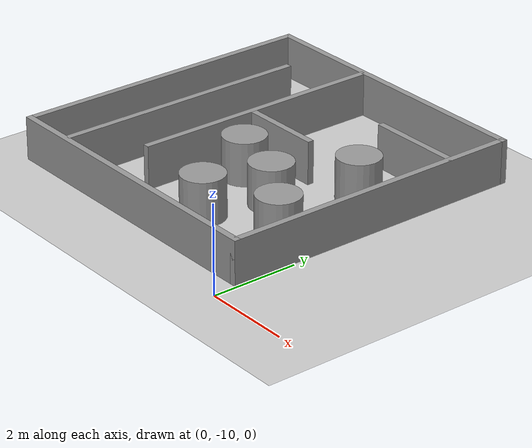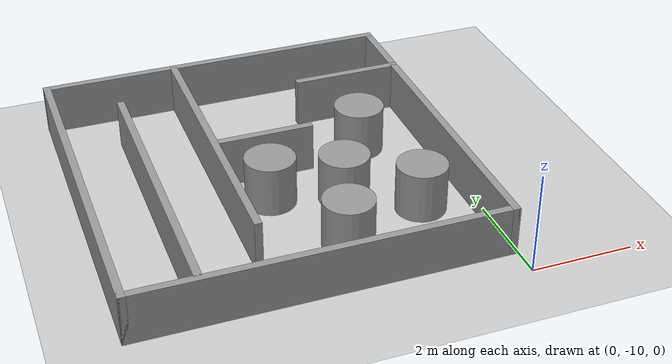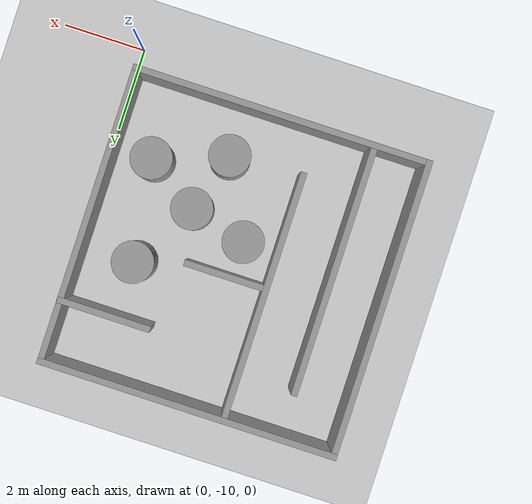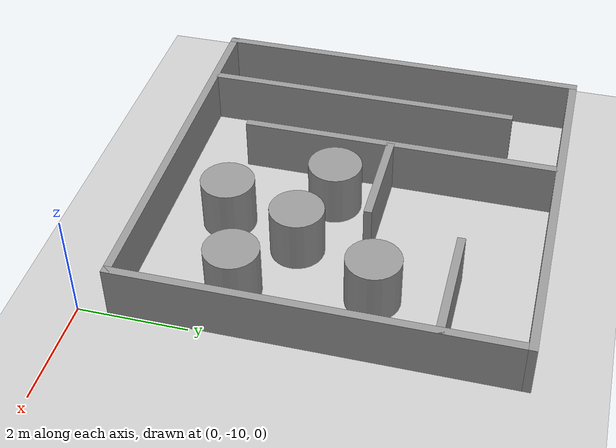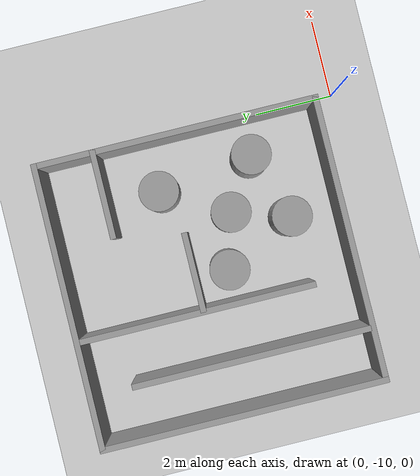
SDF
<sdf version="1.6">
 <world name="default">
  <light name="sun" type="directional">
   <pose>0 0 10 0 -0 0</pose>
   <diffuse>0.8 0.8 0.8 1</diffuse>
   <specular>0.1 0.1 0.1 1</specular>
   <attenuation>
    <range>1000</range>
    <constant>0.9</constant>
    <linear>0.01</linear>
    <quadratic>0.001</quadratic>
   </attenuation>
   <direction>-0.5 0.5 -1</direction>
  </light>
  <model name="ground_plane">
   <static>1</static>
   <link name="link">
    <collision name="collision">
     <geometry><plane><normal>0 0 1</normal><size>100 100</size></plane></geometry>
     <surface><friction><ode><mu>100</mu><mu2>50</mu2></ode></friction></surface>
    </collision>
    <visual name="visual">
     <cast_shadows>0</cast_shadows>
     <geometry><plane><normal>0 0 1</normal><size>100 100</size></plane></geometry>
     <material>
      <script><uri>file://media/materials/scripts/gazebo.material</uri><name>Gazebo/Grey</name></script>
     </material>
    </visual>
   </link>
  </model>
  <gravity>0 0 -9.8</gravity>
  <magnetic_field>6e-06 2.3e-05 -4.2e-05</magnetic_field>
  <atmosphere type="adiabatic"/>
  <physics name="default_physics" default="0" type="ode">
   <max_step_size>0.001</max_step_size>
   <real_time_factor>1</real_time_factor>
   <real_time_update_rate>1000</real_time_update_rate>
  </physics>
  <scene><ambient>0.4 0.4 0.4 1</ambient><background>0.7 0.7 0.7 1</background><shadows>1</shadows></scene>
  <spherical_coordinates>
   <surface_model>EARTH_WGS84</surface_model>
   <latitude_deg>0</latitude_deg>
   <longitude_deg>0</longitude_deg>
   <elevation>0</elevation>
   <heading_deg>0</heading_deg>
  </spherical_coordinates>
  <model name="empty_maze">
   <pose>-3.66 -5.84 0 0 -0 0</pose>
   <link name="Wall_0">
    <collision name="Wall_0_Collision">
     <geometry><box><size>7.25 0.15 1</size></box></geometry>
     <pose>0 0 0.5 0 -0 0</pose>
    </collision>
    <visual name="Wall_0_Visual">
     <pose>0 0 0.5 0 -0 0</pose>
     <geometry><box><size>7.25 0.15 1</size></box></geometry>
     <material>
      <script><uri>file://media/materials/scripts/gazebo.material</uri><name>Gazebo/Grey</name></script>
      <ambient>1 1 1 1</ambient>
     </material>
    </visual>
    <pose>0 3.55 0 0 -0 3.14159</pose>
   </link>
   <link name="Wall_1">
    <collision name="Wall_1_Collision">
     <geometry><box><size>7.25 0.15 1</size></box></geometry>
     <pose>0 0 0.5 0 -0 0</pose>
    </collision>
    <visual name="Wall_1_Visual">
     <pose>0 0 0.5 0 -0 0</pose>
     <geometry><box><size>7.25 0.15 1</size></box></geometry>
     <material>
      <script><uri>file://media/materials/scripts/gazebo.material</uri><name>Gazebo/Grey</name></script>
      <ambient>1 1 1 1</ambient>
     </material>
    </visual>
    <pose>-3.55 0 0 0 0 -1.5708</pose>
   </link>
   <link name="Wall_11">
    <collision name="Wall_11_Collision">
     <geometry><box><size>2.25 0.15 1</size></box></geometry>
     <pose>0 0 0.5 0 -0 0</pose>
    </collision>
    <visual name="Wall_11_Visual">
     <pose>0 0 0.5 0 -0 0</pose>
     <geometry><box><size>2.25 0.15 1</size></box></geometry>
     <material>
      <script><uri>file://media/materials/scripts/gazebo.material</uri><name>Gazebo/Grey</name></script>
      <ambient>1 1 1 1</ambient>
     </material>
    </visual>
    <pose>2.49237 2.07698 0 0 -0 0</pose>
   </link>
   <link name="Wall_2">
    <collision name="Wall_2_Collision">
     <geometry><box><size>7.25 0.15 1</size></box></geometry>
     <pose>0 0 0.5 0 -0 0</pose>
    </collision>
    <visual name="Wall_2_Visual">
     <pose>0 0 0.5 0 -0 0</pose>
     <geometry><box><size>7.25 0.15 1</size></box></geometry>
     <material>
      <script><uri>file://media/materials/scripts/gazebo.material</uri><name>Gazebo/Grey</name></script>
      <ambient>1 1 1 1</ambient>
     </material>
    </visual>
    <pose>0 -3.55 0 0 -0 0</pose>
   </link>
   <link name="Wall_3">
    <collision name="Wall_3_Collision">
     <geometry><box><size>7.25 0.15 1</size></box></geometry>
     <pose>0 0 0.5 0 -0 0</pose>
    </collision>
    <visual name="Wall_3_Visual">
     <pose>0 0 0.5 0 -0 0</pose>
     <geometry><box><size>7.25 0.15 1</size></box></geometry>
     <material>
      <script><uri>file://media/materials/scripts/gazebo.material</uri><name>Gazebo/Grey</name></script>
      <ambient>1 1 1 1</ambient>
     </material>
    </visual>
    <pose>3.55 0 0 0 -0 1.5708</pose>
   </link>
   <link name="Wall_5">
    <collision name="Wall_5_Collision">
     <geometry><box><size>6 0.15 1</size></box></geometry>
     <pose>0 0 0.5 0 -0 0</pose>
    </collision>
    <visual name="Wall_5_Visual">
     <pose>0 0 0.5 0 -0 0</pose>
     <geometry><box><size>6 0.15 1</size></box></geometry>
     <material>
      <script><uri>file://media/materials/scripts/gazebo.material</uri><name>Gazebo/Grey</name></script>
      <ambient>1 1 1 1</ambient>
     </material>
    </visual>
    <pose>-2.24407 -0.501187 0 0 -0 1.5708</pose>
   </link>
   <link name="Wall_7">
    <collision name="Wall_7_Collision">
     <geometry><box><size>6 0.15 1</size></box></geometry>
     <pose>0 0 0.5 0 -0 0</pose>
    </collision>
    <visual name="Wall_7_Visual">
     <pose>0 0 0.5 0 -0 0</pose>
     <geometry><box><size>6 0.15 1</size></box></geometry>
     <material>
      <script><uri>file://media/materials/scripts/gazebo.material</uri><name>Gazebo/Grey</name></script>
      <ambient>1 1 1 1</ambient>
     </material>
    </visual>
    <pose>-0.881137 0.540777 0 0 0 -1.5708</pose>
   </link>
   <link name="Wall_9">
    <collision name="Wall_9_Collision">
     <geometry><box><size>2 0.15 1</size></box></geometry>
     <pose>0 0 0.5 0 -0 0</pose>
    </collision>
    <visual name="Wall_9_Visual">
     <pose>0 0 0.5 0 -0 0</pose>
     <geometry><box><size>2 0.15 1</size></box></geometry>
     <material>
      <script><uri>file://media/materials/scripts/gazebo.material</uri><name>Gazebo/Grey</name></script>
      <ambient>1 1 1 1</ambient>
     </material>
    </visual>
    <pose>0.106122 0.365925 0 0 -0 0</pose>
   </link>
   <static>1</static>
  </model>
  <model name="unit_cylinder_0">
   <pose>-2.79345 -8.13413 0.499992 -3e-06 -4e-06 -0</pose>
   <link name="link">
    <inertial>
     <mass>1</mass>
     <inertia><ixx>0.145833</ixx><ixy>0</ixy><ixz>0</ixz><iyy>0.145833</iyy><iyz>0</iyz><izz>0.125</izz></inertia>
    </inertial>
    <collision name="collision">
     <geometry><cylinder><radius>0.5</radius><length>1</length></cylinder></geometry>
    </collision>
    <visual name="visual">
     <geometry><cylinder><radius>0.5</radius><length>1</length></cylinder></geometry>
     <material>
      <script><name>Gazebo/Grey</name><uri>file://media/materials/scripts/gazebo.material</uri></script>
     </material>
    </visual>
   </link>
  </model>
  <model name="unit_cylinder_1">
   <pose>-3.70137 -6.34108 0.499993 -3e-06 -3e-06 0</pose>
   <link name="link">
    <inertial>
     <mass>1</mass>
     <inertia><ixx>0.145833</ixx><ixy>0</ixy><ixz>0</ixz><iyy>0.145833</iyy><iyz>0</iyz><izz>0.125</izz></inertia>
    </inertial>
    <collision name="collision">
     <geometry><cylinder><radius>0.5</radius><length>1</length></cylinder></geometry>
    </collision>
    <visual name="visual">
     <geometry><cylinder><radius>0.5</radius><length>1</length></cylinder></geometry>
     <material>
      <script><name>Gazebo/Grey</name><uri>file://media/materials/scripts/gazebo.material</uri></script>
     </material>
    </visual>
   </link>
  </model>
  <model name="unit_cylinder_2">
   <pose>-2.34134 -6.70752 0.499997 3e-06 4e-06 -0</pose>
   <link name="link">
    <inertial>
     <mass>1</mass>
     <inertia><ixx>0.145833</ixx><ixy>0</ixy><ixz>0</ixz><iyy>0.145833</iyy><iyz>0</iyz><izz>0.125</izz></inertia>
    </inertial>
    <collision name="collision">
     <geometry><cylinder><radius>0.5</radius><length>1</length></cylinder></geometry>
    </collision>
    <visual name="visual">
     <geometry><cylinder><radius>0.5</radius><length>1</length></cylinder></geometry>
     <material>
      <script><name>Gazebo/Grey</name><uri>file://media/materials/scripts/gazebo.material</uri></script>
     </material>
    </visual>
   </link>
  </model>
  <model name="unit_cylinder_3">
   <pose>-1.4243 -5.11527 0.499993 -3e-06 -4e-06 -0</pose>
   <link name="link">
    <inertial>
     <mass>1</mass>
     <inertia><ixx>0.145833</ixx><ixy>0</ixy><ixz>0</ixz><iyy>0.145833</iyy><iyz>0</iyz><izz>0.125</izz></inertia>
    </inertial>
    <collision name="collision">
     <geometry><cylinder><radius>0.5</radius><length>1</length></cylinder></geometry>
    </collision>
    <visual name="visual">
     <geometry><cylinder><radius>0.5</radius><length>1</length></cylinder></geometry>
     <material>
      <script><name>Gazebo/Grey</name><uri>file://media/materials/scripts/gazebo.material</uri></script>
     </material>
    </visual>
   </link>
  </model>
  <model name="unit_cylinder_4">
   <pose>-1.08972 -7.52534 0.499997 3e-06 4e-06 -0</pose>
   <link name="link">
    <inertial>
     <mass>1</mass>
     <inertia><ixx>0.145833</ixx><ixy>0</ixy><ixz>0</ixz><iyy>0.145833</iyy><iyz>0</iyz><izz>0.125</izz></inertia>
    </inertial>
    <collision name="collision">
     <geometry><cylinder><radius>0.5</radius><length>1</length></cylinder></geometry>
    </collision>
    <visual name="visual">
     <geometry><cylinder><radius>0.5</radius><length>1</length></cylinder></geometry>
     <material>
      <script><name>Gazebo/Grey</name><uri>file://media/materials/scripts/gazebo.material</uri></script>
     </material>
    </visual>
   </link>
  </model>
 </world>
</sdf>
